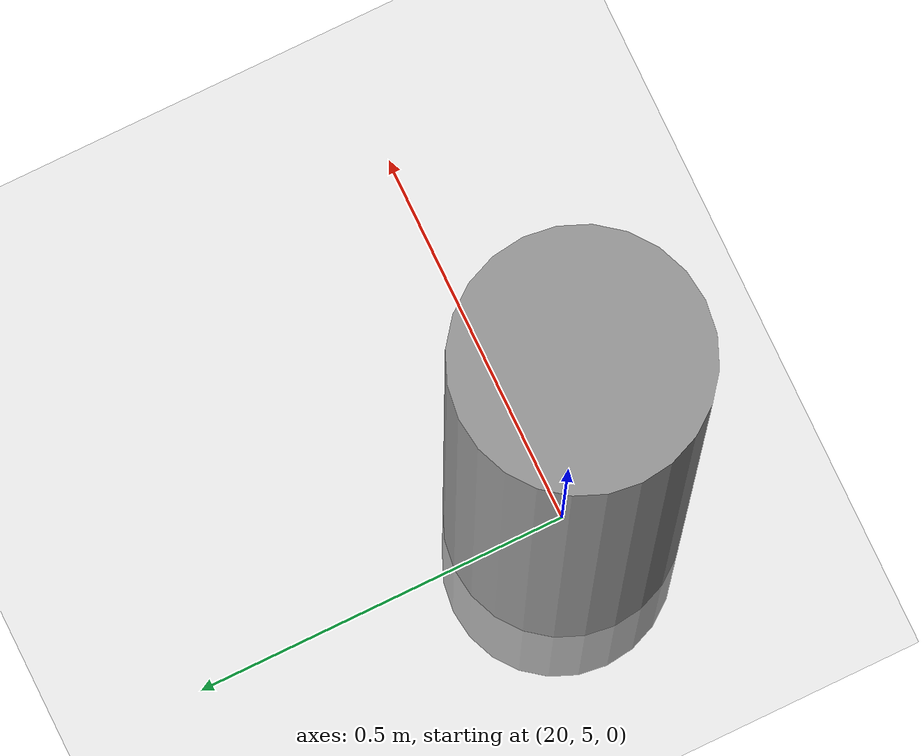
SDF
<?xml version="1.0" ?>
<sdf version="1.4">
  <world name="default">
    <physics type='ode'>
      <max_step_size>0.005</max_step_size>
      <real_time_factor>1</real_time_factor>
      <real_time_update_rate>200</real_time_update_rate>
      <gravity>0 0 -9.8</gravity>
    </physics>
    <!-- A global light source -->
    <include>
      <uri>model://sun</uri>
    </include>
    <!-- A ground plane -->
    <include>
      <uri>model://ground_plane</uri>
    </include>
    <!-- Cylinder -->
    <model name='unit_cylinder'>
      <pose frame=''>20 5 0.5 0 -0 0</pose>
      <link name='link'>
        <inertial>
          <mass>1</mass>
          <inertia>
            <ixx>0.145833</ixx>
            <ixy>0</ixy>
            <ixz>0</ixz>
            <iyy>0.145833</iyy>
            <iyz>0</iyz>
            <izz>0.125</izz>
          </inertia>
        </inertial>
        <collision name='collision'>
          <geometry>
            <cylinder>
              <radius>0.15</radius>
              <length>2</length>
            </cylinder>
          </geometry>
          <max_contacts>10</max_contacts>
        </collision>
        <visual name='visual'>
          <geometry>
            <cylinder>
              <radius>0.15</radius>
              <length>2</length>
            </cylinder>
          </geometry>
          <material>
            <script>
              <name>Gazebo/Grey</name>
              <uri>file://media/materials/scripts/gazebo.material</uri>
            </script>
          </material>
        </visual>
        <self_collide>0</self_collide>
        <kinematic>0</kinematic>
      </link>
    </model>

  </world>
</sdf>
